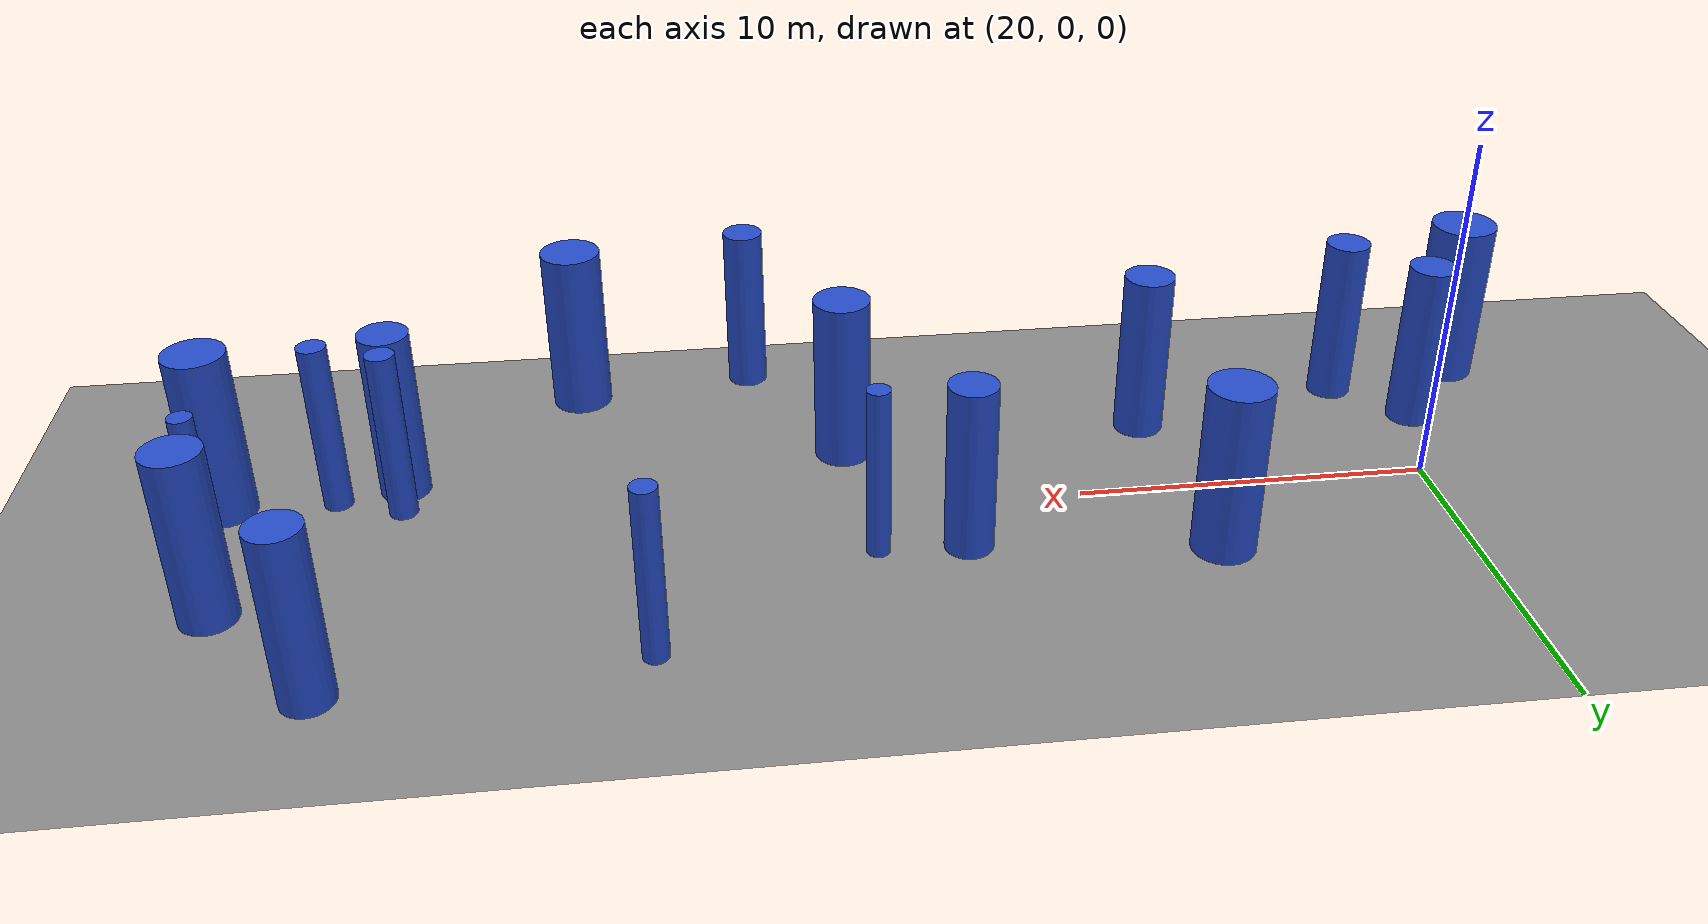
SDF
<sdf version="1.7">
 <world name="forest_randomization_v1">
  <gravity>0 0 -9.8</gravity>
  <light name="sun" type="directional">
   <pose>30 0 20 0 -0 0</pose>
   <diffuse>0.8 0.8 0.8 1</diffuse>
   <specular>0.2 0.2 0.2 1</specular>
   <direction>-0.5 0.5 -1</direction>
   <attenuation><range>10</range></attenuation>
   <spot><inner_angle>0</inner_angle><outer_angle>0</outer_angle><falloff>0</falloff></spot>
  </light>
  <model name="forest_ground_60x20">
   <static>1</static>
   <pose>30 0 0 0 -0 0</pose>
   <link name="link">
    <collision name="collision">
     <geometry><plane><normal>0 0 1</normal><size>60 20</size></plane></geometry>
    </collision>
    <visual name="visual">
     <cast_shadows>0</cast_shadows>
     <geometry><plane><normal>0 0 1</normal><size>60 20</size></plane></geometry>
     <material><ambient>0.45 0.45 0.45 1</ambient><diffuse>0.55 0.55 0.55 1</diffuse></material>
    </visual>
   </link>
  </model>
  <physics name="default_physics" type="ode">
   <max_step_size>0.001</max_step_size>
   <real_time_update_rate>1000</real_time_update_rate>
   <real_time_factor>1</real_time_factor>
  </physics>
  <scene>
   <ambient>0.4 0.4 0.4 1</ambient>
   <background>0.7 0.7 0.7 1</background>
   <shadows>1</shadows>
   <grid>1</grid>
  </scene>
  <magnetic_field>6e-06 2.3e-05 -4.2e-05</magnetic_field>
  <atmosphere type="adiabatic"/>
  <spherical_coordinates>
   <surface_model>EARTH_WGS84</surface_model>
   <latitude_deg>0</latitude_deg>
   <longitude_deg>0</longitude_deg>
   <elevation>0</elevation>
   <heading_deg>0</heading_deg>
  </spherical_coordinates>
  <model name="sparse_0">
   <static>0</static>
   <link name="link">
    <inertial>
     <mass>2</mass>
     <inertia><ixx>4.62591</ixx><ixy>0</ixy><ixz>0</ixz><iyy>4.62591</iyy><iyz>0</iyz><izz>0.918478</izz></inertia>
    </inertial>
    <collision name="collision">
     <geometry><cylinder><length>5</length><radius>0.958372</radius></cylinder></geometry>
     <surface><contact><collide_without_contact>1</collide_without_contact></contact></surface>
    </collision>
    <visual name="visual">
     <geometry><cylinder><length>5</length><radius>0.958372</radius></cylinder></geometry>
     <material>
      <script><uri>file://media/materials/scripts/gazebo.material</uri><name>Gazebo/Blue</name></script>
     </material>
    </visual>
    <gravity>0</gravity>
   </link>
   <pose>17.0303 -5.77238 2.5 0 -0 0</pose>
  </model>
  <model name="sparse_1">
   <static>0</static>
   <link name="link">
    <inertial>
     <mass>2</mass>
     <inertia><ixx>4.37343</ixx><ixy>0</ixy><ixz>0</ixz><iyy>4.37343</iyy><iyz>0</iyz><izz>0.413532</izz></inertia>
    </inertial>
    <collision name="collision">
     <geometry><cylinder><length>5</length><radius>0.643064</radius></cylinder></geometry>
     <surface><contact><collide_without_contact>1</collide_without_contact></contact></surface>
    </collision>
    <visual name="visual">
     <geometry><cylinder><length>5</length><radius>0.643064</radius></cylinder></geometry>
     <material>
      <script><uri>file://media/materials/scripts/gazebo.material</uri><name>Gazebo/Blue</name></script>
     </material>
    </visual>
    <gravity>0</gravity>
   </link>
   <pose>21.0152 -4.91528 2.5 0 -0 0</pose>
  </model>
  <model name="sparse_2">
   <static>0</static>
   <link name="link">
    <inertial>
     <mass>2</mass>
     <inertia><ixx>4.40225</ixx><ixy>0</ixy><ixz>0</ixz><iyy>4.40225</iyy><iyz>0</iyz><izz>0.471174</izz></inertia>
    </inertial>
    <collision name="collision">
     <geometry><cylinder><length>5</length><radius>0.686421</radius></cylinder></geometry>
     <surface><contact><collide_without_contact>1</collide_without_contact></contact></surface>
    </collision>
    <visual name="visual">
     <geometry><cylinder><length>5</length><radius>0.686421</radius></cylinder></geometry>
     <material>
      <script><uri>file://media/materials/scripts/gazebo.material</uri><name>Gazebo/Blue</name></script>
     </material>
    </visual>
    <gravity>0</gravity>
   </link>
   <pose>19.1364 -3.04524 2.5 0 -0 0</pose>
  </model>
  <model name="medium_3">
   <static>0</static>
   <link name="link">
    <inertial>
     <mass>2</mass>
     <inertia><ixx>4.56596</ixx><ixy>0</ixy><ixz>0</ixz><iyy>4.56596</iyy><iyz>0</iyz><izz>0.798582</izz></inertia>
    </inertial>
    <collision name="collision">
     <geometry><cylinder><length>5</length><radius>0.893634</radius></cylinder></geometry>
     <surface><contact><collide_without_contact>1</collide_without_contact></contact></surface>
    </collision>
    <visual name="visual">
     <geometry><cylinder><length>5</length><radius>0.893634</radius></cylinder></geometry>
     <material>
      <script><uri>file://media/materials/scripts/gazebo.material</uri><name>Gazebo/Blue</name></script>
     </material>
    </visual>
    <gravity>0</gravity>
   </link>
   <pose>26.7781 2.94758 2.5 0 -0 0</pose>
  </model>
  <model name="medium_4">
   <static>0</static>
   <link name="link">
    <inertial>
     <mass>2</mass>
     <inertia><ixx>4.22032</ixx><ixy>0</ixy><ixz>0</ixz><iyy>4.22032</iyy><iyz>0</iyz><izz>0.107307</izz></inertia>
    </inertial>
    <collision name="collision">
     <geometry><cylinder><length>5</length><radius>0.327578</radius></cylinder></geometry>
     <surface><contact><collide_without_contact>1</collide_without_contact></contact></surface>
    </collision>
    <visual name="visual">
     <geometry><cylinder><length>5</length><radius>0.327578</radius></cylinder></geometry>
     <material>
      <script><uri>file://media/materials/scripts/gazebo.material</uri><name>Gazebo/Blue</name></script>
     </material>
    </visual>
    <gravity>0</gravity>
   </link>
   <pose>36.0213 1.99455 2.5 0 -0 0</pose>
  </model>
  <model name="medium_5">
   <static>0</static>
   <link name="link">
    <inertial>
     <mass>2</mass>
     <inertia><ixx>4.42754</ixx><ixy>0</ixy><ixz>0</ixz><iyy>4.42754</iyy><iyz>0</iyz><izz>0.521741</izz></inertia>
    </inertial>
    <collision name="collision">
     <geometry><cylinder><length>5</length><radius>0.722317</radius></cylinder></geometry>
     <surface><contact><collide_without_contact>1</collide_without_contact></contact></surface>
    </collision>
    <visual name="visual">
     <geometry><cylinder><length>5</length><radius>0.722317</radius></cylinder></geometry>
     <material>
      <script><uri>file://media/materials/scripts/gazebo.material</uri><name>Gazebo/Blue</name></script>
     </material>
    </visual>
    <gravity>0</gravity>
   </link>
   <pose>27.4698 -3.48833 2.5 0 -0 0</pose>
  </model>
  <model name="medium_6">
   <static>0</static>
   <link name="link">
    <inertial>
     <mass>2</mass>
     <inertia><ixx>4.49884</ixx><ixy>0</ixy><ixz>0</ixz><iyy>4.49884</iyy><iyz>0</iyz><izz>0.664337</izz></inertia>
    </inertial>
    <collision name="collision">
     <geometry><cylinder><length>5</length><radius>0.815068</radius></cylinder></geometry>
     <surface><contact><collide_without_contact>1</collide_without_contact></contact></surface>
    </collision>
    <visual name="visual">
     <geometry><cylinder><length>5</length><radius>0.815068</radius></cylinder></geometry>
     <material>
      <script><uri>file://media/materials/scripts/gazebo.material</uri><name>Gazebo/Blue</name></script>
     </material>
    </visual>
    <gravity>0</gravity>
   </link>
   <pose>36.4134 -3.1065 2.5 0 -0 0</pose>
  </model>
  <model name="medium_7">
   <static>0</static>
   <link name="link">
    <inertial>
     <mass>2</mass>
     <inertia><ixx>4.3981</ixx><ixy>0</ixy><ixz>0</ixz><iyy>4.3981</iyy><iyz>0</iyz><izz>0.462867</izz></inertia>
    </inertial>
    <collision name="collision">
     <geometry><cylinder><length>5</length><radius>0.680343</radius></cylinder></geometry>
     <surface><contact><collide_without_contact>1</collide_without_contact></contact></surface>
    </collision>
    <visual name="visual">
     <geometry><cylinder><length>5</length><radius>0.680343</radius></cylinder></geometry>
     <material>
      <script><uri>file://media/materials/scripts/gazebo.material</uri><name>Gazebo/Blue</name></script>
     </material>
    </visual>
    <gravity>0</gravity>
   </link>
   <pose>33.5702 2.03841 2.5 0 -0 0</pose>
  </model>
  <model name="medium_8">
   <static>0</static>
   <link name="link">
    <inertial>
     <mass>2</mass>
     <inertia><ixx>4.33639</ixx><ixy>0</ixy><ixz>0</ixz><iyy>4.33639</iyy><iyz>0</iyz><izz>0.339442</izz></inertia>
    </inertial>
    <collision name="collision">
     <geometry><cylinder><length>5</length><radius>0.582617</radius></cylinder></geometry>
     <surface><contact><collide_without_contact>1</collide_without_contact></contact></surface>
    </collision>
    <visual name="visual">
     <geometry><cylinder><length>5</length><radius>0.582617</radius></cylinder></geometry>
     <material>
      <script><uri>file://media/materials/scripts/gazebo.material</uri><name>Gazebo/Blue</name></script>
     </material>
    </visual>
    <gravity>0</gravity>
   </link>
   <pose>38.9119 -7.91546 2.5 0 -0 0</pose>
  </model>
  <model name="dense_9">
   <static>0</static>
   <link name="link">
    <inertial>
     <mass>2</mass>
     <inertia><ixx>4.41528</ixx><ixy>0</ixy><ixz>0</ixz><iyy>4.41528</iyy><iyz>0</iyz><izz>0.497218</izz></inertia>
    </inertial>
    <collision name="collision">
     <geometry><cylinder><length>5</length><radius>0.705137</radius></cylinder></geometry>
     <surface><contact><collide_without_contact>1</collide_without_contact></contact></surface>
    </collision>
    <visual name="visual">
     <geometry><cylinder><length>5</length><radius>0.705137</radius></cylinder></geometry>
     <material>
      <script><uri>file://media/materials/scripts/gazebo.material</uri><name>Gazebo/Blue</name></script>
     </material>
    </visual>
    <gravity>0</gravity>
   </link>
   <pose>50.2863 6.35307 2.5 0 -0 0</pose>
  </model>
  <model name="dense_10">
   <static>0</static>
   <link name="link">
    <inertial>
     <mass>2</mass>
     <inertia><ixx>4.24571</ixx><ixy>0</ixy><ixz>0</ixz><iyy>4.24571</iyy><iyz>0</iyz><izz>0.158088</izz></inertia>
    </inertial>
    <collision name="collision">
     <geometry><cylinder><length>5</length><radius>0.397603</radius></cylinder></geometry>
     <surface><contact><collide_without_contact>1</collide_without_contact></contact></surface>
    </collision>
    <visual name="visual">
     <geometry><cylinder><length>5</length><radius>0.397603</radius></cylinder></geometry>
     <material>
      <script><uri>file://media/materials/scripts/gazebo.material</uri><name>Gazebo/Blue</name></script>
     </material>
    </visual>
    <gravity>0</gravity>
   </link>
   <pose>48.863 -1.49509 2.5 0 -0 0</pose>
  </model>
  <model name="dense_11">
   <static>0</static>
   <link name="link">
    <inertial>
     <mass>2</mass>
     <inertia><ixx>4.21838</ixx><ixy>0</ixy><ixz>0</ixz><iyy>4.21838</iyy><iyz>0</iyz><izz>0.103425</izz></inertia>
    </inertial>
    <collision name="collision">
     <geometry><cylinder><length>5</length><radius>0.321598</radius></cylinder></geometry>
     <surface><contact><collide_without_contact>1</collide_without_contact></contact></surface>
    </collision>
    <visual name="visual">
     <geometry><cylinder><length>5</length><radius>0.321598</radius></cylinder></geometry>
     <material>
      <script><uri>file://media/materials/scripts/gazebo.material</uri><name>Gazebo/Blue</name></script>
     </material>
    </visual>
    <gravity>0</gravity>
   </link>
   <pose>53.3869 1.17403 2.5 0 -0 0</pose>
  </model>
  <model name="dense_12">
   <static>0</static>
   <link name="link">
    <inertial>
     <mass>2</mass>
     <inertia><ixx>4.46986</ixx><ixy>0</ixy><ixz>0</ixz><iyy>4.46986</iyy><iyz>0</iyz><izz>0.606392</izz></inertia>
    </inertial>
    <collision name="collision">
     <geometry><cylinder><length>5</length><radius>0.778712</radius></cylinder></geometry>
     <surface><contact><collide_without_contact>1</collide_without_contact></contact></surface>
    </collision>
    <visual name="visual">
     <geometry><cylinder><length>5</length><radius>0.778712</radius></cylinder></geometry>
     <material>
      <script><uri>file://media/materials/scripts/gazebo.material</uri><name>Gazebo/Blue</name></script>
     </material>
    </visual>
    <gravity>0</gravity>
   </link>
   <pose>53.2704 2.76609 2.5 0 -0 0</pose>
  </model>
  <model name="dense_13">
   <static>0</static>
   <link name="link">
    <inertial>
     <mass>2</mass>
     <inertia><ixx>4.54498</ixx><ixy>0</ixy><ixz>0</ixz><iyy>4.54498</iyy><iyz>0</iyz><izz>0.756621</izz></inertia>
    </inertial>
    <collision name="collision">
     <geometry><cylinder><length>5</length><radius>0.86984</radius></cylinder></geometry>
     <surface><contact><collide_without_contact>1</collide_without_contact></contact></surface>
    </collision>
    <visual name="visual">
     <geometry><cylinder><length>5</length><radius>0.86984</radius></cylinder></geometry>
     <material>
      <script><uri>file://media/materials/scripts/gazebo.material</uri><name>Gazebo/Blue</name></script>
     </material>
    </visual>
    <gravity>0</gravity>
   </link>
   <pose>44.0407 -7.18032 2.5 0 -0 0</pose>
  </model>
  <model name="dense_14">
   <static>0</static>
   <link name="link">
    <inertial>
     <mass>2</mass>
     <inertia><ixx>4.22831</ixx><ixy>0</ixy><ixz>0</ixz><iyy>4.22831</iyy><iyz>0</iyz><izz>0.123278</izz></inertia>
    </inertial>
    <collision name="collision">
     <geometry><cylinder><length>5</length><radius>0.351109</radius></cylinder></geometry>
     <surface><contact><collide_without_contact>1</collide_without_contact></contact></surface>
    </collision>
    <visual name="visual">
     <geometry><cylinder><length>5</length><radius>0.351109</radius></cylinder></geometry>
     <material>
      <script><uri>file://media/materials/scripts/gazebo.material</uri><name>Gazebo/Blue</name></script>
     </material>
    </visual>
    <gravity>0</gravity>
   </link>
   <pose>42.0244 5.74775 2.5 0 -0 0</pose>
  </model>
  <model name="dense_15">
   <static>0</static>
   <link name="link">
    <inertial>
     <mass>2</mass>
     <inertia><ixx>4.24732</ixx><ixy>0</ixy><ixz>0</ixz><iyy>4.24732</iyy><iyz>0</iyz><izz>0.161313</izz></inertia>
    </inertial>
    <collision name="collision">
     <geometry><cylinder><length>5</length><radius>0.401638</radius></cylinder></geometry>
     <surface><contact><collide_without_contact>1</collide_without_contact></contact></surface>
    </collision>
    <visual name="visual">
     <geometry><cylinder><length>5</length><radius>0.401638</radius></cylinder></geometry>
     <material>
      <script><uri>file://media/materials/scripts/gazebo.material</uri><name>Gazebo/Blue</name></script>
     </material>
    </visual>
    <gravity>0</gravity>
   </link>
   <pose>50.7167 -2.1644 2.5 0 -0 0</pose>
  </model>
  <model name="dense_16">
   <static>0</static>
   <link name="link">
    <inertial>
     <mass>2</mass>
     <inertia><ixx>4.53009</ixx><ixy>0</ixy><ixz>0</ixz><iyy>4.53009</iyy><iyz>0</iyz><izz>0.726855</izz></inertia>
    </inertial>
    <collision name="collision">
     <geometry><cylinder><length>5</length><radius>0.852558</radius></cylinder></geometry>
     <surface><contact><collide_without_contact>1</collide_without_contact></contact></surface>
    </collision>
    <visual name="visual">
     <geometry><cylinder><length>5</length><radius>0.852558</radius></cylinder></geometry>
     <material>
      <script><uri>file://media/materials/scripts/gazebo.material</uri><name>Gazebo/Blue</name></script>
     </material>
    </visual>
    <gravity>0</gravity>
   </link>
   <pose>53.7518 -2.17137 2.5 0 -0 0</pose>
  </model>
  <model name="dense_17">
   <static>0</static>
   <link name="link">
    <inertial>
     <mass>2</mass>
     <inertia><ixx>4.41294</ixx><ixy>0</ixy><ixz>0</ixz><iyy>4.41294</iyy><iyz>0</iyz><izz>0.492538</izz></inertia>
    </inertial>
    <collision name="collision">
     <geometry><cylinder><length>5</length><radius>0.701811</radius></cylinder></geometry>
     <surface><contact><collide_without_contact>1</collide_without_contact></contact></surface>
    </collision>
    <visual name="visual">
     <geometry><cylinder><length>5</length><radius>0.701811</radius></cylinder></geometry>
     <material>
      <script><uri>file://media/materials/scripts/gazebo.material</uri><name>Gazebo/Blue</name></script>
     </material>
    </visual>
    <gravity>0</gravity>
   </link>
   <pose>48.9228 -2.67233 2.5 0 -0 0</pose>
  </model>
 </world>
</sdf>
